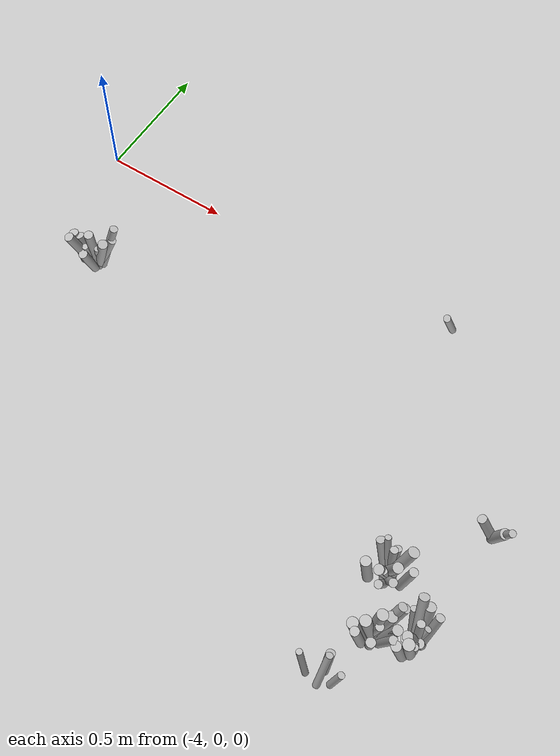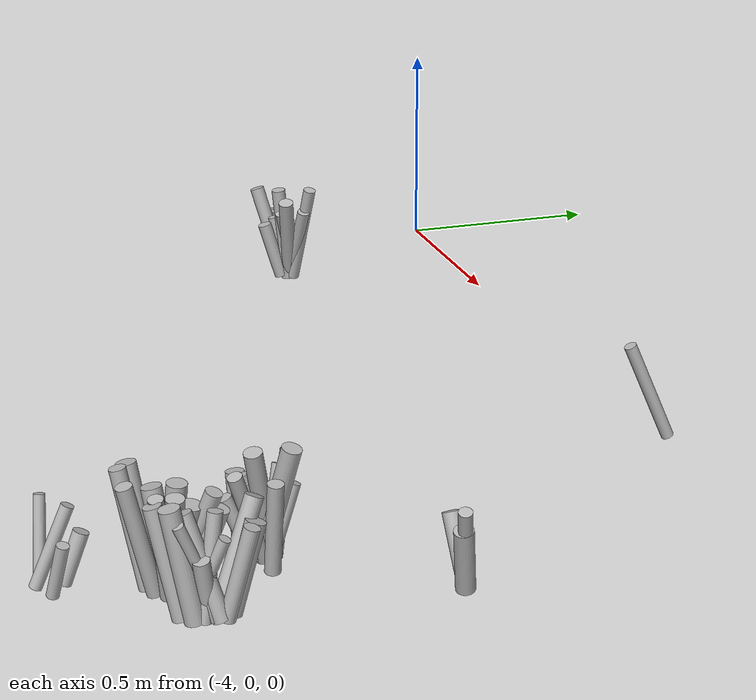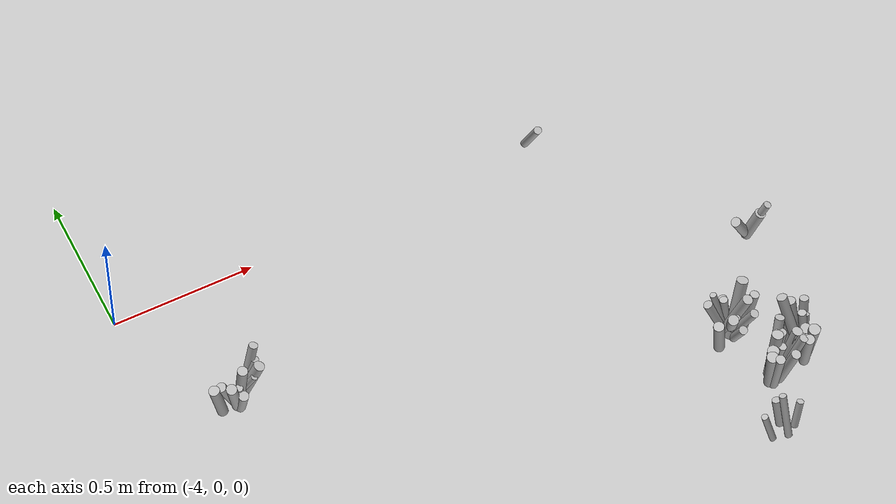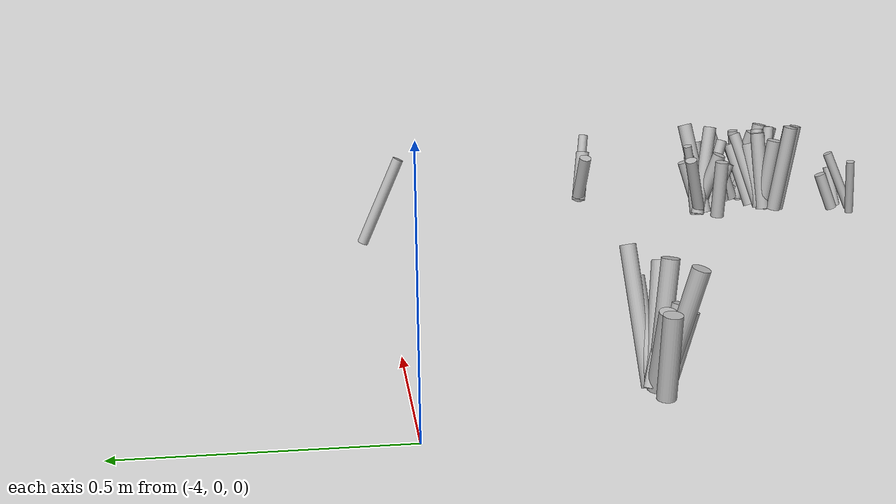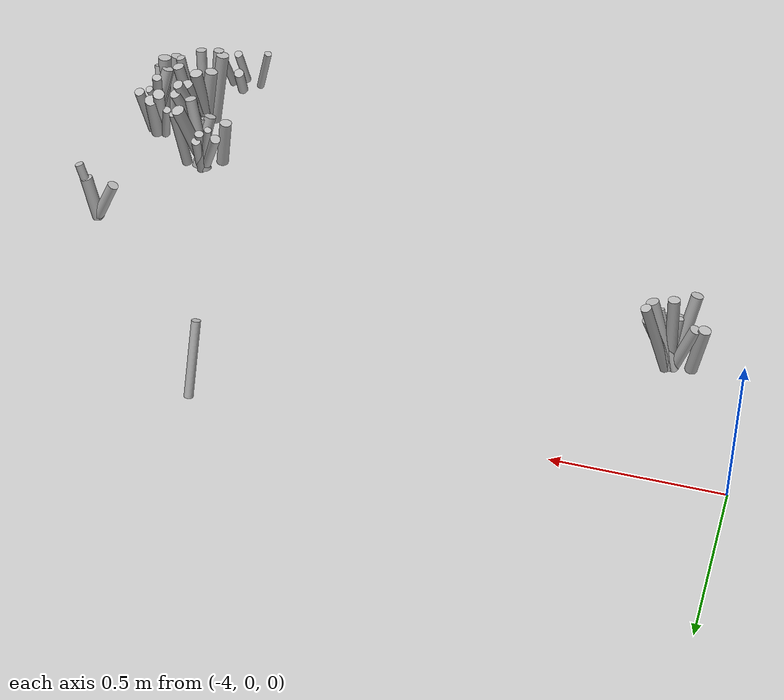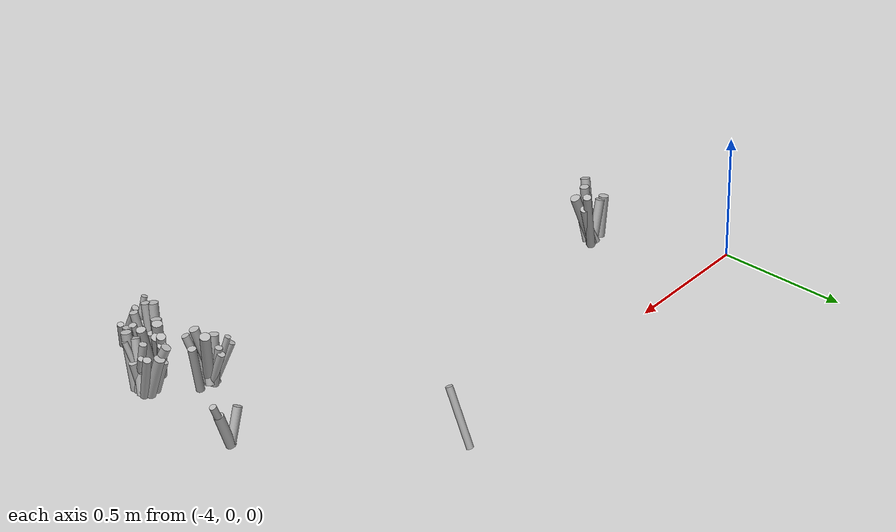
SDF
<sdf version="1.6">
 <world name="default">
  <model name="tussocks">
   <static>true</static>
   <link name="tuft30_0">
    <pose>-3.7895 -0.4494 0.0759 0 0.3255 3.3311</pose>
    <visual name="tuft30_0_v">
     <geometry><cylinder><radius>0.0172</radius><length>0.1650</length></cylinder></geometry>
     <material>
      <script>
       <uri>model://bushfire/materials/scripts</uri>
       <uri>model://bushfire/materials/textures</uri>
       <name>Bushfire/Tussock</name>
      </script>
     </material>
    </visual>
   </link>
   <link name="tuft30_1">
    <pose>-3.7204 -0.4561 0.1072 0 0.3403 5.9268</pose>
    <visual name="tuft30_1_v">
     <geometry><cylinder><radius>0.0188</radius><length>0.2330</length></cylinder></geometry>
     <material>
      <script>
       <uri>model://bushfire/materials/scripts</uri>
       <uri>model://bushfire/materials/textures</uri>
       <name>Bushfire/Foliage2</name>
      </script>
     </material>
    </visual>
   </link>
   <link name="tuft30_2">
    <pose>-3.7490 -0.4604 0.1133 0 0.1130 5.0790</pose>
    <visual name="tuft30_2_v">
     <geometry><cylinder><radius>0.0175</radius><length>0.2464</length></cylinder></geometry>
     <material>
      <script>
       <uri>model://bushfire/materials/scripts</uri>
       <uri>model://bushfire/materials/textures</uri>
       <name>Bushfire/Tussock</name>
      </script>
     </material>
    </visual>
   </link>
   <link name="tuft30_3">
    <pose>-3.7093 -0.4227 0.1215 0 0.2864 0.4102</pose>
    <visual name="tuft30_3_v">
     <geometry><cylinder><radius>0.0155</radius><length>0.2641</length></cylinder></geometry>
     <material>
      <script>
       <uri>model://bushfire/materials/scripts</uri>
       <uri>model://bushfire/materials/textures</uri>
       <name>Bushfire/Foliage2</name>
      </script>
     </material>
    </visual>
   </link>
   <link name="tuft30_4">
    <pose>-3.7835 -0.4855 0.1120 0 0.3030 4.1345</pose>
    <visual name="tuft30_4_v">
     <geometry><cylinder><radius>0.0179</radius><length>0.2435</length></cylinder></geometry>
     <material>
      <script>
       <uri>model://bushfire/materials/scripts</uri>
       <uri>model://bushfire/materials/textures</uri>
       <name>Bushfire/Foliage2</name>
      </script>
     </material>
    </visual>
   </link>
   <link name="tuft30_5">
    <pose>-3.7587 -0.4870 0.0686 0 0.2888 4.6450</pose>
    <visual name="tuft30_5_v">
     <geometry><cylinder><radius>0.0174</radius><length>0.1491</length></cylinder></geometry>
     <material>
      <script>
       <uri>model://bushfire/materials/scripts</uri>
       <uri>model://bushfire/materials/textures</uri>
       <name>Bushfire/Foliage2</name>
      </script>
     </material>
    </visual>
   </link>
   <link name="tuft30_6">
    <pose>-3.7162 -0.4326 0.0936 0 0.3689 0.2572</pose>
    <visual name="tuft30_6_v">
     <geometry><cylinder><radius>0.0157</radius><length>0.2035</length></cylinder></geometry>
     <material>
      <script>
       <uri>model://bushfire/materials/scripts</uri>
       <uri>model://bushfire/materials/textures</uri>
       <name>Bushfire/Tussock</name>
      </script>
     </material>
    </visual>
   </link>
   <link name="tuft30_7">
    <pose>-3.7609 -0.4675 0.0760 0 0.2087 4.5046</pose>
    <visual name="tuft30_7_v">
     <geometry><cylinder><radius>0.0125</radius><length>0.1653</length></cylinder></geometry>
     <material>
      <script>
       <uri>model://bushfire/materials/scripts</uri>
       <uri>model://bushfire/materials/textures</uri>
       <name>Bushfire/Foliage2</name>
      </script>
     </material>
    </visual>
   </link>
   <link name="tuft30_8">
    <pose>-3.8284 -0.4548 0.0752 0 0.1647 3.3036</pose>
    <visual name="tuft30_8_v">
     <geometry><cylinder><radius>0.0186</radius><length>0.1634</length></cylinder></geometry>
     <material>
      <script>
       <uri>model://bushfire/materials/scripts</uri>
       <uri>model://bushfire/materials/textures</uri>
       <name>Bushfire/Foliage2</name>
      </script>
     </material>
    </visual>
   </link>
   <link name="tuft30_9">
    <pose>-3.7393 -0.4559 0.0911 0 0.4171 5.6166</pose>
    <visual name="tuft30_9_v">
     <geometry><cylinder><radius>0.0112</radius><length>0.1981</length></cylinder></geometry>
     <material>
      <script>
       <uri>model://bushfire/materials/scripts</uri>
       <uri>model://bushfire/materials/textures</uri>
       <name>Bushfire/Tussock</name>
      </script>
     </material>
    </visual>
   </link>
   <link name="tuft59_1">
    <pose>-1.9823 -0.6164 0.0647 0 0.4119 3.3637</pose>
    <visual name="tuft59_1_v">
     <geometry><cylinder><radius>0.0169</radius><length>0.1407</length></cylinder></geometry>
     <material>
      <script>
       <uri>model://bushfire/materials/scripts</uri>
       <uri>model://bushfire/materials/textures</uri>
       <name>Bushfire/Tussock</name>
      </script>
     </material>
    </visual>
   </link>
   <link name="tuft59_2">
    <pose>-1.9313 -0.6222 0.0883 0 0.3499 5.8880</pose>
    <visual name="tuft59_2_v">
     <geometry><cylinder><radius>0.0133</radius><length>0.1919</length></cylinder></geometry>
     <material>
      <script>
       <uri>model://bushfire/materials/scripts</uri>
       <uri>model://bushfire/materials/textures</uri>
       <name>Bushfire/Foliage2</name>
      </script>
     </material>
    </visual>
   </link>
   <link name="tuft59_6">
    <pose>-1.9393 -0.6207 0.0648 0 0.2922 5.8079</pose>
    <visual name="tuft59_6_v">
     <geometry><cylinder><radius>0.0190</radius><length>0.1408</length></cylinder></geometry>
     <material>
      <script>
       <uri>model://bushfire/materials/scripts</uri>
       <uri>model://bushfire/materials/textures</uri>
       <name>Bushfire/Tussock</name>
      </script>
     </material>
    </visual>
   </link>
   <link name="tuft77_0">
    <pose>-2.0751 -1.1416 0.1037 0 0.2523 5.8066</pose>
    <visual name="tuft77_0_v">
     <geometry><cylinder><radius>0.0146</radius><length>0.2254</length></cylinder></geometry>
     <material>
      <script>
       <uri>model://bushfire/materials/scripts</uri>
       <uri>model://bushfire/materials/textures</uri>
       <name>Bushfire/Tussock</name>
      </script>
     </material>
    </visual>
   </link>
   <link name="tuft77_1">
    <pose>-2.1119 -1.0956 0.0842 0 0.2664 0.6339</pose>
    <visual name="tuft77_1_v">
     <geometry><cylinder><radius>0.0198</radius><length>0.1829</length></cylinder></geometry>
     <material>
      <script>
       <uri>model://bushfire/materials/scripts</uri>
       <uri>model://bushfire/materials/textures</uri>
       <name>Bushfire/Tussock</name>
      </script>
     </material>
    </visual>
   </link>
   <link name="tuft77_2">
    <pose>-2.1219 -1.1187 0.0777 0 0.1730 5.7239</pose>
    <visual name="tuft77_2_v">
     <geometry><cylinder><radius>0.0143</radius><length>0.1690</length></cylinder></geometry>
     <material>
      <script>
       <uri>model://bushfire/materials/scripts</uri>
       <uri>model://bushfire/materials/textures</uri>
       <name>Bushfire/Foliage2</name>
      </script>
     </material>
    </visual>
   </link>
   <link name="tuft77_3">
    <pose>-2.0829 -1.1194 0.1004 0 0.2344 6.1280</pose>
    <visual name="tuft77_3_v">
     <geometry><cylinder><radius>0.0125</radius><length>0.2182</length></cylinder></geometry>
     <material>
      <script>
       <uri>model://bushfire/materials/scripts</uri>
       <uri>model://bushfire/materials/textures</uri>
       <name>Bushfire/Tussock</name>
      </script>
     </material>
    </visual>
   </link>
   <link name="tuft77_4">
    <pose>-2.0911 -1.0597 0.0837 0 0.3710 0.8846</pose>
    <visual name="tuft77_4_v">
     <geometry><cylinder><radius>0.0170</radius><length>0.1819</length></cylinder></geometry>
     <material>
      <script>
       <uri>model://bushfire/materials/scripts</uri>
       <uri>model://bushfire/materials/textures</uri>
       <name>Bushfire/Foliage2</name>
      </script>
     </material>
    </visual>
   </link>
   <link name="tuft77_5">
    <pose>-2.0786 -1.1167 0.1005 0 0.2237 6.1884</pose>
    <visual name="tuft77_5_v">
     <geometry><cylinder><radius>0.0177</radius><length>0.2186</length></cylinder></geometry>
     <material>
      <script>
       <uri>model://bushfire/materials/scripts</uri>
       <uri>model://bushfire/materials/textures</uri>
       <name>Bushfire/Foliage2</name>
      </script>
     </material>
    </visual>
   </link>
   <link name="tuft77_6">
    <pose>-2.1682 -1.1623 0.1115 0 0.1876 4.1135</pose>
    <visual name="tuft77_6_v">
     <geometry><cylinder><radius>0.0196</radius><length>0.2423</length></cylinder></geometry>
     <material>
      <script>
       <uri>model://bushfire/materials/scripts</uri>
       <uri>model://bushfire/materials/textures</uri>
       <name>Bushfire/Tussock</name>
      </script>
     </material>
    </visual>
   </link>
   <link name="tuft77_7">
    <pose>-2.1446 -1.1277 0.0917 0 0.1719 4.1129</pose>
    <visual name="tuft77_7_v">
     <geometry><cylinder><radius>0.0197</radius><length>0.1994</length></cylinder></geometry>
     <material>
      <script>
       <uri>model://bushfire/materials/scripts</uri>
       <uri>model://bushfire/materials/textures</uri>
       <name>Bushfire/Tussock</name>
      </script>
     </material>
    </visual>
   </link>
   <link name="tuft77_8">
    <pose>-2.1297 -1.1092 0.0994 0 0.1306 0.5454</pose>
    <visual name="tuft77_8_v">
     <geometry><cylinder><radius>0.0197</radius><length>0.2160</length></cylinder></geometry>
     <material>
      <script>
       <uri>model://bushfire/materials/scripts</uri>
       <uri>model://bushfire/materials/textures</uri>
       <name>Bushfire/Tussock</name>
      </script>
     </material>
    </visual>
   </link>
   <link name="tuft77_9">
    <pose>-2.1551 -1.1785 0.1115 0 0.1871 4.4004</pose>
    <visual name="tuft77_9_v">
     <geometry><cylinder><radius>0.0161</radius><length>0.2425</length></cylinder></geometry>
     <material>
      <script>
       <uri>model://bushfire/materials/scripts</uri>
       <uri>model://bushfire/materials/textures</uri>
       <name>Bushfire/Tussock</name>
      </script>
     </material>
    </visual>
   </link>
   <link name="tuft77_10">
    <pose>-2.1033 -1.0751 0.0989 0 0.3843 0.8770</pose>
    <visual name="tuft77_10_v">
     <geometry><cylinder><radius>0.0164</radius><length>0.2151</length></cylinder></geometry>
     <material>
      <script>
       <uri>model://bushfire/materials/scripts</uri>
       <uri>model://bushfire/materials/textures</uri>
       <name>Bushfire/Tussock</name>
      </script>
     </material>
    </visual>
   </link>
   <link name="tuft77_11">
    <pose>-2.1124 -1.1740 0.1070 0 0.2382 5.0370</pose>
    <visual name="tuft77_11_v">
     <geometry><cylinder><radius>0.0162</radius><length>0.2327</length></cylinder></geometry>
     <material>
      <script>
       <uri>model://bushfire/materials/scripts</uri>
       <uri>model://bushfire/materials/textures</uri>
       <name>Bushfire/Foliage2</name>
      </script>
     </material>
    </visual>
   </link>
   <link name="tuft136_0">
    <pose>-2.1938 -0.8945 0.0759 0 0.1401 1.8909</pose>
    <visual name="tuft136_0_v">
     <geometry><cylinder><radius>0.0142</radius><length>0.1650</length></cylinder></geometry>
     <material>
      <script>
       <uri>model://bushfire/materials/scripts</uri>
       <uri>model://bushfire/materials/textures</uri>
       <name>Bushfire/Tussock</name>
      </script>
     </material>
    </visual>
   </link>
   <link name="tuft136_1">
    <pose>-2.2248 -0.8957 0.0778 0 0.4039 2.5192</pose>
    <visual name="tuft136_1_v">
     <geometry><cylinder><radius>0.0161</radius><length>0.1691</length></cylinder></geometry>
     <material>
      <script>
       <uri>model://bushfire/materials/scripts</uri>
       <uri>model://bushfire/materials/textures</uri>
       <name>Bushfire/Tussock</name>
      </script>
     </material>
    </visual>
   </link>
   <link name="tuft136_2">
    <pose>-2.1849 -0.9744 0.0660 0 0.3906 4.6874</pose>
    <visual name="tuft136_2_v">
     <geometry><cylinder><radius>0.0147</radius><length>0.1434</length></cylinder></geometry>
     <material>
      <script>
       <uri>model://bushfire/materials/scripts</uri>
       <uri>model://bushfire/materials/textures</uri>
       <name>Bushfire/Tussock</name>
      </script>
     </material>
    </visual>
   </link>
   <link name="tuft136_3">
    <pose>-2.1884 -0.8910 0.0694 0 0.3225 1.7093</pose>
    <visual name="tuft136_3_v">
     <geometry><cylinder><radius>0.0145</radius><length>0.1509</length></cylinder></geometry>
     <material>
      <script>
       <uri>model://bushfire/materials/scripts</uri>
       <uri>model://bushfire/materials/textures</uri>
       <name>Bushfire/Foliage2</name>
      </script>
     </material>
    </visual>
   </link>
   <link name="tuft136_4">
    <pose>-2.1764 -0.9315 0.1129 0 0.2830 5.5702</pose>
    <visual name="tuft136_4_v">
     <geometry><cylinder><radius>0.0180</radius><length>0.2455</length></cylinder></geometry>
     <material>
      <script>
       <uri>model://bushfire/materials/scripts</uri>
       <uri>model://bushfire/materials/textures</uri>
       <name>Bushfire/Tussock</name>
      </script>
     </material>
    </visual>
   </link>
   <link name="tuft136_5">
    <pose>-2.1620 -0.9600 0.0948 0 0.3617 5.2690</pose>
    <visual name="tuft136_5_v">
     <geometry><cylinder><radius>0.0148</radius><length>0.2060</length></cylinder></geometry>
     <material>
      <script>
       <uri>model://bushfire/materials/scripts</uri>
       <uri>model://bushfire/materials/textures</uri>
       <name>Bushfire/Tussock</name>
      </script>
     </material>
    </visual>
   </link>
   <link name="tuft136_6">
    <pose>-2.2120 -0.8923 0.0944 0 0.2924 2.2808</pose>
    <visual name="tuft136_6_v">
     <geometry><cylinder><radius>0.0113</radius><length>0.2051</length></cylinder></geometry>
     <material>
      <script>
       <uri>model://bushfire/materials/scripts</uri>
       <uri>model://bushfire/materials/textures</uri>
       <name>Bushfire/Foliage2</name>
      </script>
     </material>
    </visual>
   </link>
   <link name="tuft136_7">
    <pose>-2.1865 -0.9431 0.0746 0 0.2351 4.5576</pose>
    <visual name="tuft136_7_v">
     <geometry><cylinder><radius>0.0112</radius><length>0.1622</length></cylinder></geometry>
     <material>
      <script>
       <uri>model://bushfire/materials/scripts</uri>
       <uri>model://bushfire/materials/textures</uri>
       <name>Bushfire/Foliage2</name>
      </script>
     </material>
    </visual>
   </link>
   <link name="tuft136_8">
    <pose>-2.1623 -0.9082 0.1163 0 0.3004 0.6738</pose>
    <visual name="tuft136_8_v">
     <geometry><cylinder><radius>0.0196</radius><length>0.2528</length></cylinder></geometry>
     <material>
      <script>
       <uri>model://bushfire/materials/scripts</uri>
       <uri>model://bushfire/materials/textures</uri>
       <name>Bushfire/Foliage2</name>
      </script>
     </material>
    </visual>
   </link>
   <link name="tuft136_9">
    <pose>-2.2495 -0.9594 0.0719 0 0.1069 3.6210</pose>
    <visual name="tuft136_9_v">
     <geometry><cylinder><radius>0.0184</radius><length>0.1563</length></cylinder></geometry>
     <material>
      <script>
       <uri>model://bushfire/materials/scripts</uri>
       <uri>model://bushfire/materials/textures</uri>
       <name>Bushfire/Foliage2</name>
      </script>
     </material>
    </visual>
   </link>
   <link name="tuft136_10">
    <pose>-2.1913 -0.9400 0.0802 0 0.3752 4.2320</pose>
    <visual name="tuft136_10_v">
     <geometry><cylinder><radius>0.0181</radius><length>0.1744</length></cylinder></geometry>
     <material>
      <script>
       <uri>model://bushfire/materials/scripts</uri>
       <uri>model://bushfire/materials/textures</uri>
       <name>Bushfire/Tussock</name>
      </script>
     </material>
    </visual>
   </link>
   <link name="tuft136_11">
    <pose>-2.1214 -0.9241 0.0889 0 0.1680 0.0185</pose>
    <visual name="tuft136_11_v">
     <geometry><cylinder><radius>0.0158</radius><length>0.1933</length></cylinder></geometry>
     <material>
      <script>
       <uri>model://bushfire/materials/scripts</uri>
       <uri>model://bushfire/materials/textures</uri>
       <name>Bushfire/Tussock</name>
      </script>
     </material>
    </visual>
   </link>
   <link name="tuft151_0">
    <pose>-2.0009 -1.0865 0.0957 0 0.3346 4.1138</pose>
    <visual name="tuft151_0_v">
     <geometry><cylinder><radius>0.0178</radius><length>0.2081</length></cylinder></geometry>
     <material>
      <script>
       <uri>model://bushfire/materials/scripts</uri>
       <uri>model://bushfire/materials/textures</uri>
       <name>Bushfire/Tussock</name>
      </script>
     </material>
    </visual>
   </link>
   <link name="tuft151_1">
    <pose>-2.0042 -1.0114 0.0814 0 0.2866 1.6955</pose>
    <visual name="tuft151_1_v">
     <geometry><cylinder><radius>0.0198</radius><length>0.1770</length></cylinder></geometry>
     <material>
      <script>
       <uri>model://bushfire/materials/scripts</uri>
       <uri>model://bushfire/materials/textures</uri>
       <name>Bushfire/Tussock</name>
      </script>
     </material>
    </visual>
   </link>
   <link name="tuft151_2">
    <pose>-2.0400 -1.0185 0.0596 0 0.2646 2.2033</pose>
    <visual name="tuft151_2_v">
     <geometry><cylinder><radius>0.0127</radius><length>0.1296</length></cylinder></geometry>
     <material>
      <script>
       <uri>model://bushfire/materials/scripts</uri>
       <uri>model://bushfire/materials/textures</uri>
       <name>Bushfire/Foliage2</name>
      </script>
     </material>
    </visual>
   </link>
   <link name="tuft151_3">
    <pose>-1.9979 -1.0737 0.0955 0 0.1462 1.9660</pose>
    <visual name="tuft151_3_v">
     <geometry><cylinder><radius>0.0144</radius><length>0.2077</length></cylinder></geometry>
     <material>
      <script>
       <uri>model://bushfire/materials/scripts</uri>
       <uri>model://bushfire/materials/textures</uri>
       <name>Bushfire/Foliage2</name>
      </script>
     </material>
    </visual>
   </link>
   <link name="tuft151_4">
    <pose>-2.0245 -1.1439 0.1012 0 0.2082 4.2951</pose>
    <visual name="tuft151_4_v">
     <geometry><cylinder><radius>0.0174</radius><length>0.2201</length></cylinder></geometry>
     <material>
      <script>
       <uri>model://bushfire/materials/scripts</uri>
       <uri>model://bushfire/materials/textures</uri>
       <name>Bushfire/Tussock</name>
      </script>
     </material>
    </visual>
   </link>
   <link name="tuft151_5">
    <pose>-2.0205 -1.0197 0.1007 0 0.3946 1.9673</pose>
    <visual name="tuft151_5_v">
     <geometry><cylinder><radius>0.0178</radius><length>0.2189</length></cylinder></geometry>
     <material>
      <script>
       <uri>model://bushfire/materials/scripts</uri>
       <uri>model://bushfire/materials/textures</uri>
       <name>Bushfire/Tussock</name>
      </script>
     </material>
    </visual>
   </link>
   <link name="tuft151_6">
    <pose>-1.9952 -1.0781 0.0772 0 0.4045 1.0661</pose>
    <visual name="tuft151_6_v">
     <geometry><cylinder><radius>0.0115</radius><length>0.1678</length></cylinder></geometry>
     <material>
      <script>
       <uri>model://bushfire/materials/scripts</uri>
       <uri>model://bushfire/materials/textures</uri>
       <name>Bushfire/Tussock</name>
      </script>
     </material>
    </visual>
   </link>
   <link name="tuft151_7">
    <pose>-1.9909 -1.0835 0.0574 0 0.2104 5.5334</pose>
    <visual name="tuft151_7_v">
     <geometry><cylinder><radius>0.0162</radius><length>0.1247</length></cylinder></geometry>
     <material>
      <script>
       <uri>model://bushfire/materials/scripts</uri>
       <uri>model://bushfire/materials/textures</uri>
       <name>Bushfire/Tussock</name>
      </script>
     </material>
    </visual>
   </link>
   <link name="tuft151_8">
    <pose>-2.0033 -1.0918 0.0935 0 0.3540 4.1763</pose>
    <visual name="tuft151_8_v">
     <geometry><cylinder><radius>0.0176</radius><length>0.2032</length></cylinder></geometry>
     <material>
      <script>
       <uri>model://bushfire/materials/scripts</uri>
       <uri>model://bushfire/materials/textures</uri>
       <name>Bushfire/Tussock</name>
      </script>
     </material>
    </visual>
   </link>
   <link name="tuft151_9">
    <pose>-1.9733 -1.0261 0.0862 0 0.2583 1.1700</pose>
    <visual name="tuft151_9_v">
     <geometry><cylinder><radius>0.0154</radius><length>0.1873</length></cylinder></geometry>
     <material>
      <script>
       <uri>model://bushfire/materials/scripts</uri>
       <uri>model://bushfire/materials/textures</uri>
       <name>Bushfire/Tussock</name>
      </script>
     </material>
    </visual>
   </link>
   <link name="tuft151_10">
    <pose>-1.9926 -1.0929 0.0938 0 0.3883 4.9336</pose>
    <visual name="tuft151_10_v">
     <geometry><cylinder><radius>0.0113</radius><length>0.2040</length></cylinder></geometry>
     <material>
      <script>
       <uri>model://bushfire/materials/scripts</uri>
       <uri>model://bushfire/materials/textures</uri>
       <name>Bushfire/Foliage2</name>
      </script>
     </material>
    </visual>
   </link>
   <link name="tuft151_11">
    <pose>-2.0009 -1.1214 0.1035 0 0.1748 4.5906</pose>
    <visual name="tuft151_11_v">
     <geometry><cylinder><radius>0.0199</radius><length>0.2250</length></cylinder></geometry>
     <material>
      <script>
       <uri>model://bushfire/materials/scripts</uri>
       <uri>model://bushfire/materials/textures</uri>
       <name>Bushfire/Foliage2</name>
      </script>
     </material>
    </visual>
   </link>
   <link name="tuft179_3">
    <pose>-2.4621 -0.0109 0.1083 0 0.4159 4.6833</pose>
    <visual name="tuft179_3_v">
     <geometry><cylinder><radius>0.0135</radius><length>0.2354</length></cylinder></geometry>
     <material>
      <script>
       <uri>model://bushfire/materials/scripts</uri>
       <uri>model://bushfire/materials/textures</uri>
       <name>Bushfire/Foliage2</name>
      </script>
     </material>
    </visual>
   </link>
   <link name="tuft181_1">
    <pose>-2.1967 -1.3194 0.0779 0 0.4019 1.5352</pose>
    <visual name="tuft181_1_v">
     <geometry><cylinder><radius>0.0126</radius><length>0.1693</length></cylinder></geometry>
     <material>
      <script>
       <uri>model://bushfire/materials/scripts</uri>
       <uri>model://bushfire/materials/textures</uri>
       <name>Bushfire/Tussock</name>
      </script>
     </material>
    </visual>
   </link>
   <link name="tuft181_2">
    <pose>-2.2014 -1.2823 0.0483 0 0.3678 1.6166</pose>
    <visual name="tuft181_2_v">
     <geometry><cylinder><radius>0.0156</radius><length>0.1049</length></cylinder></geometry>
     <material>
      <script>
       <uri>model://bushfire/materials/scripts</uri>
       <uri>model://bushfire/materials/textures</uri>
       <name>Bushfire/Foliage2</name>
      </script>
     </material>
    </visual>
   </link>
   <link name="tuft181_7">
    <pose>-2.1499 -1.3167 0.0519 0 0.2859 0.6815</pose>
    <visual name="tuft181_7_v">
     <geometry><cylinder><radius>0.0123</radius><length>0.1128</length></cylinder></geometry>
     <material>
      <script>
       <uri>model://bushfire/materials/scripts</uri>
       <uri>model://bushfire/materials/textures</uri>
       <name>Bushfire/Foliage2</name>
      </script>
     </material>
    </visual>
   </link>
   <link name="tuft181_8">
    <pose>-2.2647 -1.3311 0.0706 0 0.2392 2.7882</pose>
    <visual name="tuft181_8_v">
     <geometry><cylinder><radius>0.0114</radius><length>0.1534</length></cylinder></geometry>
     <material>
      <script>
       <uri>model://bushfire/materials/scripts</uri>
       <uri>model://bushfire/materials/textures</uri>
       <name>Bushfire/Tussock</name>
      </script>
     </material>
    </visual>
   </link>
  </model>
 </world>
</sdf>
